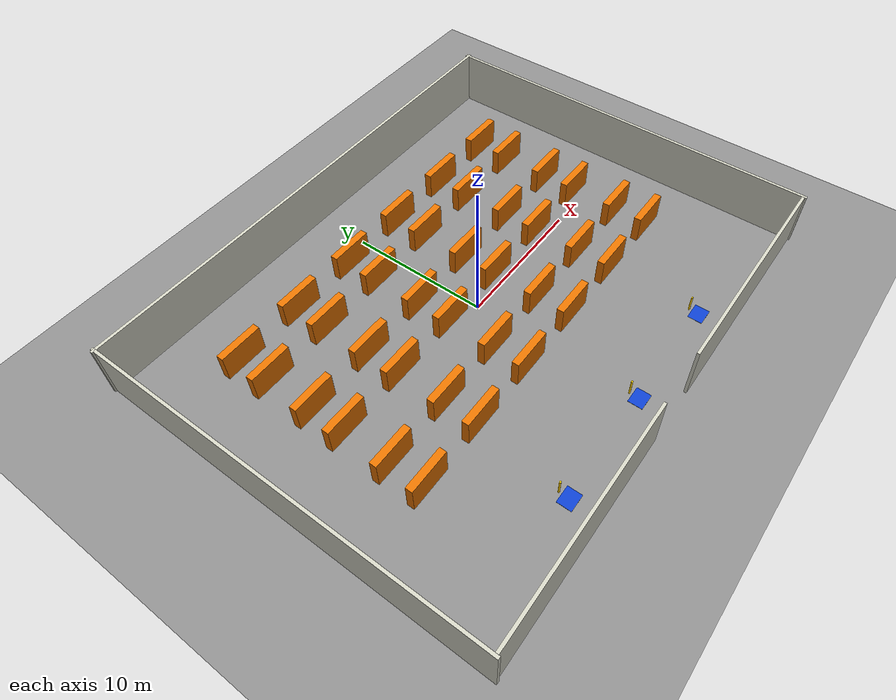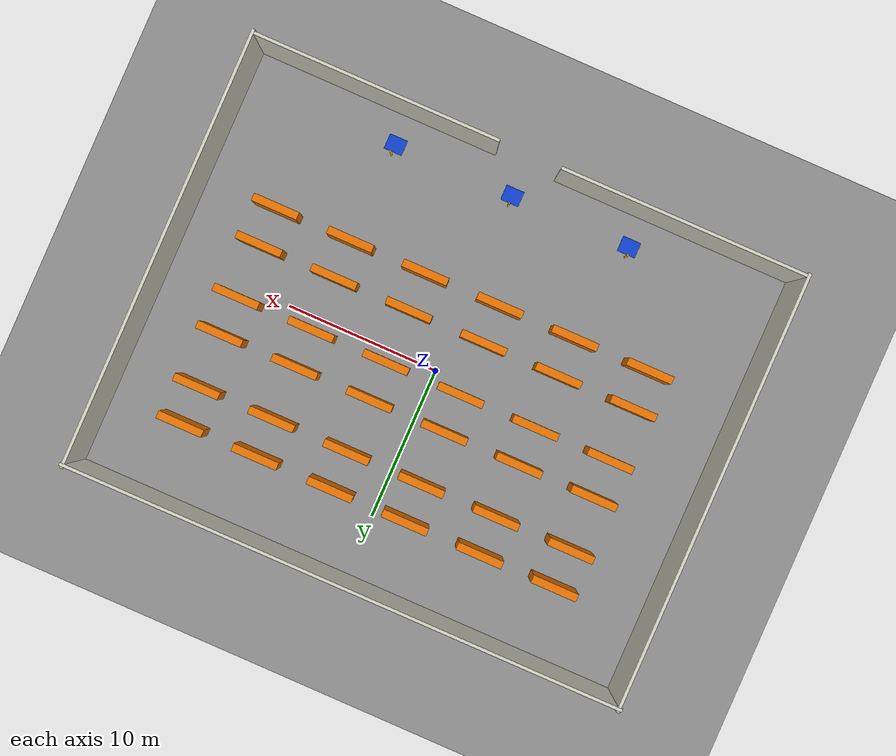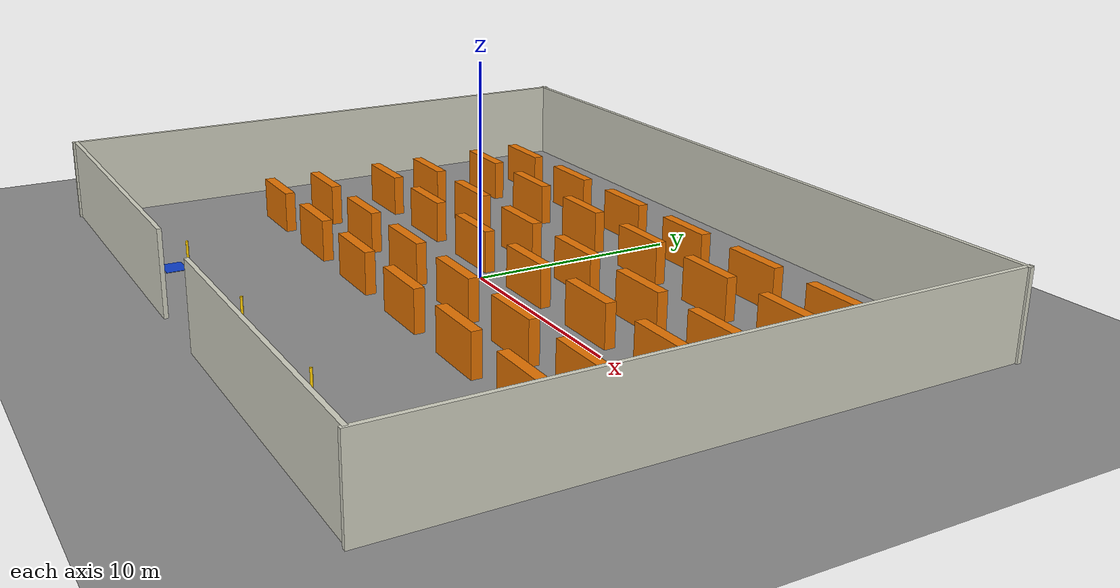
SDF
<?xml version="1.0" ?>
<sdf version="1.8">
  <world name="warehouse">

    <physics name="1ms" type="ignored">
      <max_step_size>0.001</max_step_size>
      <real_time_factor>1.0</real_time_factor>
    </physics>

    <!-- ── system plugins ───────────────────────────────────────────── -->
    <plugin filename="libignition-gazebo-physics-system.so"
            name="ignition::gazebo::systems::Physics"/>
    <plugin filename="libignition-gazebo-sensors-system.so"
            name="ignition::gazebo::systems::Sensors">
      <render_engine>ogre2</render_engine>
    </plugin>
    <plugin filename="libignition-gazebo-user-commands-system.so"
            name="ignition::gazebo::systems::UserCommands"/>
    <plugin filename="libignition-gazebo-scene-broadcaster-system.so"
            name="ignition::gazebo::systems::SceneBroadcaster"/>
    <plugin filename="libignition-gazebo-contact-system.so"
            name="ignition::gazebo::systems::Contact"/>

    <!-- ── lighting ─────────────────────────────────────────────────── -->
    <light name="sun" type="directional">
      <cast_shadows>true</cast_shadows>
      <pose>0 0 15 0 0 0</pose>
      <diffuse>0.9 0.9 0.9 1</diffuse>
      <specular>0.3 0.3 0.3 1</specular>
      <attenuation><range>1000</range><constant>0.9</constant>
                   <linear>0.01</linear><quadratic>0.001</quadratic></attenuation>
      <direction>-0.5 0.1 -0.9</direction>
    </light>

    <!-- Overhead fill lights — one per zone so aisles stay bright -->
    <light name="light_staging" type="point">
      <pose>0 -10 5 0 0 0</pose>
      <diffuse>0.8 0.8 0.8 1</diffuse><specular>0.1 0.1 0.1 1</specular>
      <attenuation><range>25</range><constant>0.5</constant><linear>0.02</linear><quadratic>0.002</quadratic></attenuation>
    </light>
    <light name="light_aisle_A" type="point">
      <pose>0 -4.0 5 0 0 0</pose>
      <diffuse>0.8 0.8 0.8 1</diffuse><specular>0.1 0.1 0.1 1</specular>
      <attenuation><range>25</range><constant>0.5</constant><linear>0.02</linear><quadratic>0.002</quadratic></attenuation>
    </light>
    <light name="light_cross_AB" type="point">
      <pose>0 -1.0 5 0 0 0</pose>
      <diffuse>0.8 0.8 0.8 1</diffuse><specular>0.1 0.1 0.1 1</specular>
      <attenuation><range>25</range><constant>0.5</constant><linear>0.02</linear><quadratic>0.002</quadratic></attenuation>
    </light>
    <light name="light_aisle_B" type="point">
      <pose>0 2.0 5 0 0 0</pose>
      <diffuse>0.8 0.8 0.8 1</diffuse><specular>0.1 0.1 0.1 1</specular>
      <attenuation><range>25</range><constant>0.5</constant><linear>0.02</linear><quadratic>0.002</quadratic></attenuation>
    </light>
    <light name="light_cross_BC" type="point">
      <pose>0 5.0 5 0 0 0</pose>
      <diffuse>0.8 0.8 0.8 1</diffuse><specular>0.1 0.1 0.1 1</specular>
      <attenuation><range>25</range><constant>0.5</constant><linear>0.02</linear><quadratic>0.002</quadratic></attenuation>
    </light>
    <light name="light_aisle_C" type="point">
      <pose>0 8.0 5 0 0 0</pose>
      <diffuse>0.8 0.8 0.8 1</diffuse><specular>0.1 0.1 0.1 1</specular>
      <attenuation><range>25</range><constant>0.5</constant><linear>0.02</linear><quadratic>0.002</quadratic></attenuation>
    </light>

    <!-- ── ground plane ─────────────────────────────────────────────── -->
    <model name="ground_plane">
      <static>true</static>
      <link name="link">
        <collision name="collision">
          <geometry><plane><normal>0 0 1</normal></plane></geometry>
        </collision>
        <visual name="visual">
          <geometry><plane><normal>0 0 1</normal><size>100 100</size></plane></geometry>
          <material><ambient>0.55 0.55 0.55 1</ambient><diffuse>0.55 0.55 0.55 1</diffuse></material>
        </visual>
      </link>
    </model>

    <model name="wall_north">
      <static>true</static><pose>0 14 2.0 0 0 0</pose>
      <link name="link">
        <collision name="col"><geometry><box><size>36.4 0.2 4.0</size></box></geometry></collision>
        <visual name="vis"><geometry><box><size>36.4 0.2 4.0</size></box></geometry>
          <material><ambient>0.82 0.82 0.76 1</ambient><diffuse>0.82 0.82 0.76 1</diffuse></material>
        </visual>
      </link>
    </model>

    <model name="wall_east">
      <static>true</static><pose>18 0 2.0 0 0 0</pose>
      <link name="link">
        <collision name="col"><geometry><box><size>0.2 28.4 4.0</size></box></geometry></collision>
        <visual name="vis"><geometry><box><size>0.2 28.4 4.0</size></box></geometry>
          <material><ambient>0.82 0.82 0.76 1</ambient><diffuse>0.82 0.82 0.76 1</diffuse></material>
        </visual>
      </link>
    </model>

    <model name="wall_west">
      <static>true</static><pose>-18 0 2.0 0 0 0</pose>
      <link name="link">
        <collision name="col"><geometry><box><size>0.2 28.4 4.0</size></box></geometry></collision>
        <visual name="vis"><geometry><box><size>0.2 28.4 4.0</size></box></geometry>
          <material><ambient>0.82 0.82 0.76 1</ambient><diffuse>0.82 0.82 0.76 1</diffuse></material>
        </visual>
      </link>
    </model>

    <!-- south-west segment  x: -18 .. -2  (16 m, centre -10) -->
    <model name="wall_south_west">
      <static>true</static><pose>-10 -14 2.0 0 0 0</pose>
      <link name="link">
        <collision name="col"><geometry><box><size>16.0 0.2 4.0</size></box></geometry></collision>
        <visual name="vis"><geometry><box><size>16.0 0.2 4.0</size></box></geometry>
          <material><ambient>0.82 0.82 0.76 1</ambient><diffuse>0.82 0.82 0.76 1</diffuse></material>
        </visual>
      </link>
    </model>

    <!-- south-east segment  x: 2 .. 18  (16 m, centre 10) -->
    <model name="wall_south_east">
      <static>true</static><pose>10 -14 2.0 0 0 0</pose>
      <link name="link">
        <collision name="col"><geometry><box><size>16.0 0.2 4.0</size></box></geometry></collision>
        <visual name="vis"><geometry><box><size>16.0 0.2 4.0</size></box></geometry>
          <material><ambient>0.82 0.82 0.76 1</ambient><diffuse>0.82 0.82 0.76 1</diffuse></material>
        </visual>
      </link>
    </model>

    <model name="dock_pad_1">
      <static>true</static><pose>-8 -12 0.01 0 0 0</pose>
      <link name="link">
        <collision name="col"><geometry><box><size>1.2 1.0 0.02</size></box></geometry></collision>
        <visual name="vis"><geometry><box><size>1.2 1.0 0.02</size></box></geometry>
          <material><ambient>0.05 0.25 0.8 1</ambient><diffuse>0.05 0.25 0.8 1</diffuse></material>
        </visual>
      </link>
    </model>
    <model name="dock_post_1">
      <static>true</static><pose>-8 -11.3 0.6 0 0 0</pose>
      <link name="link">
        <collision name="col"><geometry><cylinder><radius>0.06</radius><length>1.2</length></cylinder></geometry></collision>
        <visual name="vis"><geometry><cylinder><radius>0.06</radius><length>1.2</length></cylinder></geometry>
          <material><ambient>1.0 0.8 0.0 1</ambient><diffuse>1.0 0.8 0.0 1</diffuse></material>
        </visual>
      </link>
    </model>

    <model name="dock_pad_2">
      <static>true</static><pose>0 -12 0.01 0 0 0</pose>
      <link name="link">
        <collision name="col"><geometry><box><size>1.2 1.0 0.02</size></box></geometry></collision>
        <visual name="vis"><geometry><box><size>1.2 1.0 0.02</size></box></geometry>
          <material><ambient>0.05 0.25 0.8 1</ambient><diffuse>0.05 0.25 0.8 1</diffuse></material>
        </visual>
      </link>
    </model>
    <model name="dock_post_2">
      <static>true</static><pose>0 -11.3 0.6 0 0 0</pose>
      <link name="link">
        <collision name="col"><geometry><cylinder><radius>0.06</radius><length>1.2</length></cylinder></geometry></collision>
        <visual name="vis"><geometry><cylinder><radius>0.06</radius><length>1.2</length></cylinder></geometry>
          <material><ambient>1.0 0.8 0.0 1</ambient><diffuse>1.0 0.8 0.0 1</diffuse></material>
        </visual>
      </link>
    </model>

    <model name="dock_pad_3">
      <static>true</static><pose>8 -12 0.01 0 0 0</pose>
      <link name="link">
        <collision name="col"><geometry><box><size>1.2 1.0 0.02</size></box></geometry></collision>
        <visual name="vis"><geometry><box><size>1.2 1.0 0.02</size></box></geometry>
          <material><ambient>0.05 0.25 0.8 1</ambient><diffuse>0.05 0.25 0.8 1</diffuse></material>
        </visual>
      </link>
    </model>
    <model name="dock_post_3">
      <static>true</static><pose>8 -11.3 0.6 0 0 0</pose>
      <link name="link">
        <collision name="col"><geometry><cylinder><radius>0.06</radius><length>1.2</length></cylinder></geometry></collision>
        <visual name="vis"><geometry><cylinder><radius>0.06</radius><length>1.2</length></cylinder></geometry>
          <material><ambient>1.0 0.8 0.0 1</ambient><diffuse>1.0 0.8 0.0 1</diffuse></material>
        </visual>
      </link>
    </model>

    <!-- ── PAIR A  south rack y=-5.25  |  north rack y=-2.75 ── -->
    <model name="rack_A_S_1"><static>true</static><pose>-12 -5.25 1.0 0 0 0</pose><link name="link">
      <collision name="col"><geometry><box><size>3.0 0.5 2.0</size></box></geometry></collision>
      <visual name="vis"><geometry><box><size>3.0 0.5 2.0</size></box></geometry>
        <material><ambient>0.9 0.45 0.0 1</ambient><diffuse>0.9 0.45 0.0 1</diffuse></material>
      </visual></link></model>
    <model name="rack_A_S_2"><static>true</static><pose>-7 -5.25 1.0 0 0 0</pose><link name="link">
      <collision name="col"><geometry><box><size>3.0 0.5 2.0</size></box></geometry></collision>
      <visual name="vis"><geometry><box><size>3.0 0.5 2.0</size></box></geometry>
        <material><ambient>0.9 0.45 0.0 1</ambient><diffuse>0.9 0.45 0.0 1</diffuse></material>
      </visual></link></model>
    <model name="rack_A_S_3"><static>true</static><pose>-2 -5.25 1.0 0 0 0</pose><link name="link">
      <collision name="col"><geometry><box><size>3.0 0.5 2.0</size></box></geometry></collision>
      <visual name="vis"><geometry><box><size>3.0 0.5 2.0</size></box></geometry>
        <material><ambient>0.9 0.45 0.0 1</ambient><diffuse>0.9 0.45 0.0 1</diffuse></material>
      </visual></link></model>
    <model name="rack_A_S_4"><static>true</static><pose>3 -5.25 1.0 0 0 0</pose><link name="link">
      <collision name="col"><geometry><box><size>3.0 0.5 2.0</size></box></geometry></collision>
      <visual name="vis"><geometry><box><size>3.0 0.5 2.0</size></box></geometry>
        <material><ambient>0.9 0.45 0.0 1</ambient><diffuse>0.9 0.45 0.0 1</diffuse></material>
      </visual></link></model>
    <model name="rack_A_S_5"><static>true</static><pose>8 -5.25 1.0 0 0 0</pose><link name="link">
      <collision name="col"><geometry><box><size>3.0 0.5 2.0</size></box></geometry></collision>
      <visual name="vis"><geometry><box><size>3.0 0.5 2.0</size></box></geometry>
        <material><ambient>0.9 0.45 0.0 1</ambient><diffuse>0.9 0.45 0.0 1</diffuse></material>
      </visual></link></model>
    <model name="rack_A_S_6"><static>true</static><pose>13 -5.25 1.0 0 0 0</pose><link name="link">
      <collision name="col"><geometry><box><size>3.0 0.5 2.0</size></box></geometry></collision>
      <visual name="vis"><geometry><box><size>3.0 0.5 2.0</size></box></geometry>
        <material><ambient>0.9 0.45 0.0 1</ambient><diffuse>0.9 0.45 0.0 1</diffuse></material>
      </visual></link></model>

    <model name="rack_A_N_1"><static>true</static><pose>-12 -2.75 1.0 0 0 0</pose><link name="link">
      <collision name="col"><geometry><box><size>3.0 0.5 2.0</size></box></geometry></collision>
      <visual name="vis"><geometry><box><size>3.0 0.5 2.0</size></box></geometry>
        <material><ambient>0.9 0.45 0.0 1</ambient><diffuse>0.9 0.45 0.0 1</diffuse></material>
      </visual></link></model>
    <model name="rack_A_N_2"><static>true</static><pose>-7 -2.75 1.0 0 0 0</pose><link name="link">
      <collision name="col"><geometry><box><size>3.0 0.5 2.0</size></box></geometry></collision>
      <visual name="vis"><geometry><box><size>3.0 0.5 2.0</size></box></geometry>
        <material><ambient>0.9 0.45 0.0 1</ambient><diffuse>0.9 0.45 0.0 1</diffuse></material>
      </visual></link></model>
    <model name="rack_A_N_3"><static>true</static><pose>-2 -2.75 1.0 0 0 0</pose><link name="link">
      <collision name="col"><geometry><box><size>3.0 0.5 2.0</size></box></geometry></collision>
      <visual name="vis"><geometry><box><size>3.0 0.5 2.0</size></box></geometry>
        <material><ambient>0.9 0.45 0.0 1</ambient><diffuse>0.9 0.45 0.0 1</diffuse></material>
      </visual></link></model>
    <model name="rack_A_N_4"><static>true</static><pose>3 -2.75 1.0 0 0 0</pose><link name="link">
      <collision name="col"><geometry><box><size>3.0 0.5 2.0</size></box></geometry></collision>
      <visual name="vis"><geometry><box><size>3.0 0.5 2.0</size></box></geometry>
        <material><ambient>0.9 0.45 0.0 1</ambient><diffuse>0.9 0.45 0.0 1</diffuse></material>
      </visual></link></model>
    <model name="rack_A_N_5"><static>true</static><pose>8 -2.75 1.0 0 0 0</pose><link name="link">
      <collision name="col"><geometry><box><size>3.0 0.5 2.0</size></box></geometry></collision>
      <visual name="vis"><geometry><box><size>3.0 0.5 2.0</size></box></geometry>
        <material><ambient>0.9 0.45 0.0 1</ambient><diffuse>0.9 0.45 0.0 1</diffuse></material>
      </visual></link></model>
    <model name="rack_A_N_6"><static>true</static><pose>13 -2.75 1.0 0 0 0</pose><link name="link">
      <collision name="col"><geometry><box><size>3.0 0.5 2.0</size></box></geometry></collision>
      <visual name="vis"><geometry><box><size>3.0 0.5 2.0</size></box></geometry>
        <material><ambient>0.9 0.45 0.0 1</ambient><diffuse>0.9 0.45 0.0 1</diffuse></material>
      </visual></link></model>

    <!-- ── PAIR B  south rack y=0.75  |  north rack y=3.25 ── -->
    <model name="rack_B_S_1"><static>true</static><pose>-12 0.75 1.0 0 0 0</pose><link name="link">
      <collision name="col"><geometry><box><size>3.0 0.5 2.0</size></box></geometry></collision>
      <visual name="vis"><geometry><box><size>3.0 0.5 2.0</size></box></geometry>
        <material><ambient>0.9 0.45 0.0 1</ambient><diffuse>0.9 0.45 0.0 1</diffuse></material>
      </visual></link></model>
    <model name="rack_B_S_2"><static>true</static><pose>-7 0.75 1.0 0 0 0</pose><link name="link">
      <collision name="col"><geometry><box><size>3.0 0.5 2.0</size></box></geometry></collision>
      <visual name="vis"><geometry><box><size>3.0 0.5 2.0</size></box></geometry>
        <material><ambient>0.9 0.45 0.0 1</ambient><diffuse>0.9 0.45 0.0 1</diffuse></material>
      </visual></link></model>
    <model name="rack_B_S_3"><static>true</static><pose>-2 0.75 1.0 0 0 0</pose><link name="link">
      <collision name="col"><geometry><box><size>3.0 0.5 2.0</size></box></geometry></collision>
      <visual name="vis"><geometry><box><size>3.0 0.5 2.0</size></box></geometry>
        <material><ambient>0.9 0.45 0.0 1</ambient><diffuse>0.9 0.45 0.0 1</diffuse></material>
      </visual></link></model>
    <model name="rack_B_S_4"><static>true</static><pose>3 0.75 1.0 0 0 0</pose><link name="link">
      <collision name="col"><geometry><box><size>3.0 0.5 2.0</size></box></geometry></collision>
      <visual name="vis"><geometry><box><size>3.0 0.5 2.0</size></box></geometry>
        <material><ambient>0.9 0.45 0.0 1</ambient><diffuse>0.9 0.45 0.0 1</diffuse></material>
      </visual></link></model>
    <model name="rack_B_S_5"><static>true</static><pose>8 0.75 1.0 0 0 0</pose><link name="link">
      <collision name="col"><geometry><box><size>3.0 0.5 2.0</size></box></geometry></collision>
      <visual name="vis"><geometry><box><size>3.0 0.5 2.0</size></box></geometry>
        <material><ambient>0.9 0.45 0.0 1</ambient><diffuse>0.9 0.45 0.0 1</diffuse></material>
      </visual></link></model>
    <model name="rack_B_S_6"><static>true</static><pose>13 0.75 1.0 0 0 0</pose><link name="link">
      <collision name="col"><geometry><box><size>3.0 0.5 2.0</size></box></geometry></collision>
      <visual name="vis"><geometry><box><size>3.0 0.5 2.0</size></box></geometry>
        <material><ambient>0.9 0.45 0.0 1</ambient><diffuse>0.9 0.45 0.0 1</diffuse></material>
      </visual></link></model>

    <model name="rack_B_N_1"><static>true</static><pose>-12 3.25 1.0 0 0 0</pose><link name="link">
      <collision name="col"><geometry><box><size>3.0 0.5 2.0</size></box></geometry></collision>
      <visual name="vis"><geometry><box><size>3.0 0.5 2.0</size></box></geometry>
        <material><ambient>0.9 0.45 0.0 1</ambient><diffuse>0.9 0.45 0.0 1</diffuse></material>
      </visual></link></model>
    <model name="rack_B_N_2"><static>true</static><pose>-7 3.25 1.0 0 0 0</pose><link name="link">
      <collision name="col"><geometry><box><size>3.0 0.5 2.0</size></box></geometry></collision>
      <visual name="vis"><geometry><box><size>3.0 0.5 2.0</size></box></geometry>
        <material><ambient>0.9 0.45 0.0 1</ambient><diffuse>0.9 0.45 0.0 1</diffuse></material>
      </visual></link></model>
    <model name="rack_B_N_3"><static>true</static><pose>-2 3.25 1.0 0 0 0</pose><link name="link">
      <collision name="col"><geometry><box><size>3.0 0.5 2.0</size></box></geometry></collision>
      <visual name="vis"><geometry><box><size>3.0 0.5 2.0</size></box></geometry>
        <material><ambient>0.9 0.45 0.0 1</ambient><diffuse>0.9 0.45 0.0 1</diffuse></material>
      </visual></link></model>
    <model name="rack_B_N_4"><static>true</static><pose>3 3.25 1.0 0 0 0</pose><link name="link">
      <collision name="col"><geometry><box><size>3.0 0.5 2.0</size></box></geometry></collision>
      <visual name="vis"><geometry><box><size>3.0 0.5 2.0</size></box></geometry>
        <material><ambient>0.9 0.45 0.0 1</ambient><diffuse>0.9 0.45 0.0 1</diffuse></material>
      </visual></link></model>
    <model name="rack_B_N_5"><static>true</static><pose>8 3.25 1.0 0 0 0</pose><link name="link">
      <collision name="col"><geometry><box><size>3.0 0.5 2.0</size></box></geometry></collision>
      <visual name="vis"><geometry><box><size>3.0 0.5 2.0</size></box></geometry>
        <material><ambient>0.9 0.45 0.0 1</ambient><diffuse>0.9 0.45 0.0 1</diffuse></material>
      </visual></link></model>
    <model name="rack_B_N_6"><static>true</static><pose>13 3.25 1.0 0 0 0</pose><link name="link">
      <collision name="col"><geometry><box><size>3.0 0.5 2.0</size></box></geometry></collision>
      <visual name="vis"><geometry><box><size>3.0 0.5 2.0</size></box></geometry>
        <material><ambient>0.9 0.45 0.0 1</ambient><diffuse>0.9 0.45 0.0 1</diffuse></material>
      </visual></link></model>

    <!-- ── PAIR C  south rack y=6.75  |  north rack y=9.25 ── -->
    <model name="rack_C_S_1"><static>true</static><pose>-12 6.75 1.0 0 0 0</pose><link name="link">
      <collision name="col"><geometry><box><size>3.0 0.5 2.0</size></box></geometry></collision>
      <visual name="vis"><geometry><box><size>3.0 0.5 2.0</size></box></geometry>
        <material><ambient>0.9 0.45 0.0 1</ambient><diffuse>0.9 0.45 0.0 1</diffuse></material>
      </visual></link></model>
    <model name="rack_C_S_2"><static>true</static><pose>-7 6.75 1.0 0 0 0</pose><link name="link">
      <collision name="col"><geometry><box><size>3.0 0.5 2.0</size></box></geometry></collision>
      <visual name="vis"><geometry><box><size>3.0 0.5 2.0</size></box></geometry>
        <material><ambient>0.9 0.45 0.0 1</ambient><diffuse>0.9 0.45 0.0 1</diffuse></material>
      </visual></link></model>
    <model name="rack_C_S_3"><static>true</static><pose>-2 6.75 1.0 0 0 0</pose><link name="link">
      <collision name="col"><geometry><box><size>3.0 0.5 2.0</size></box></geometry></collision>
      <visual name="vis"><geometry><box><size>3.0 0.5 2.0</size></box></geometry>
        <material><ambient>0.9 0.45 0.0 1</ambient><diffuse>0.9 0.45 0.0 1</diffuse></material>
      </visual></link></model>
    <model name="rack_C_S_4"><static>true</static><pose>3 6.75 1.0 0 0 0</pose><link name="link">
      <collision name="col"><geometry><box><size>3.0 0.5 2.0</size></box></geometry></collision>
      <visual name="vis"><geometry><box><size>3.0 0.5 2.0</size></box></geometry>
        <material><ambient>0.9 0.45 0.0 1</ambient><diffuse>0.9 0.45 0.0 1</diffuse></material>
      </visual></link></model>
    <model name="rack_C_S_5"><static>true</static><pose>8 6.75 1.0 0 0 0</pose><link name="link">
      <collision name="col"><geometry><box><size>3.0 0.5 2.0</size></box></geometry></collision>
      <visual name="vis"><geometry><box><size>3.0 0.5 2.0</size></box></geometry>
        <material><ambient>0.9 0.45 0.0 1</ambient><diffuse>0.9 0.45 0.0 1</diffuse></material>
      </visual></link></model>
    <model name="rack_C_S_6"><static>true</static><pose>13 6.75 1.0 0 0 0</pose><link name="link">
      <collision name="col"><geometry><box><size>3.0 0.5 2.0</size></box></geometry></collision>
      <visual name="vis"><geometry><box><size>3.0 0.5 2.0</size></box></geometry>
        <material><ambient>0.9 0.45 0.0 1</ambient><diffuse>0.9 0.45 0.0 1</diffuse></material>
      </visual></link></model>

    <model name="rack_C_N_1"><static>true</static><pose>-12 9.25 1.0 0 0 0</pose><link name="link">
      <collision name="col"><geometry><box><size>3.0 0.5 2.0</size></box></geometry></collision>
      <visual name="vis"><geometry><box><size>3.0 0.5 2.0</size></box></geometry>
        <material><ambient>0.9 0.45 0.0 1</ambient><diffuse>0.9 0.45 0.0 1</diffuse></material>
      </visual></link></model>
    <model name="rack_C_N_2"><static>true</static><pose>-7 9.25 1.0 0 0 0</pose><link name="link">
      <collision name="col"><geometry><box><size>3.0 0.5 2.0</size></box></geometry></collision>
      <visual name="vis"><geometry><box><size>3.0 0.5 2.0</size></box></geometry>
        <material><ambient>0.9 0.45 0.0 1</ambient><diffuse>0.9 0.45 0.0 1</diffuse></material>
      </visual></link></model>
    <model name="rack_C_N_3"><static>true</static><pose>-2 9.25 1.0 0 0 0</pose><link name="link">
      <collision name="col"><geometry><box><size>3.0 0.5 2.0</size></box></geometry></collision>
      <visual name="vis"><geometry><box><size>3.0 0.5 2.0</size></box></geometry>
        <material><ambient>0.9 0.45 0.0 1</ambient><diffuse>0.9 0.45 0.0 1</diffuse></material>
      </visual></link></model>
    <model name="rack_C_N_4"><static>true</static><pose>3 9.25 1.0 0 0 0</pose><link name="link">
      <collision name="col"><geometry><box><size>3.0 0.5 2.0</size></box></geometry></collision>
      <visual name="vis"><geometry><box><size>3.0 0.5 2.0</size></box></geometry>
        <material><ambient>0.9 0.45 0.0 1</ambient><diffuse>0.9 0.45 0.0 1</diffuse></material>
      </visual></link></model>
    <model name="rack_C_N_5"><static>true</static><pose>8 9.25 1.0 0 0 0</pose><link name="link">
      <collision name="col"><geometry><box><size>3.0 0.5 2.0</size></box></geometry></collision>
      <visual name="vis"><geometry><box><size>3.0 0.5 2.0</size></box></geometry>
        <material><ambient>0.9 0.45 0.0 1</ambient><diffuse>0.9 0.45 0.0 1</diffuse></material>
      </visual></link></model>
    <model name="rack_C_N_6"><static>true</static><pose>13 9.25 1.0 0 0 0</pose><link name="link">
      <collision name="col"><geometry><box><size>3.0 0.5 2.0</size></box></geometry></collision>
      <visual name="vis"><geometry><box><size>3.0 0.5 2.0</size></box></geometry>
        <material><ambient>0.9 0.45 0.0 1</ambient><diffuse>0.9 0.45 0.0 1</diffuse></material>
      </visual></link></model>

  </world>
</sdf>
